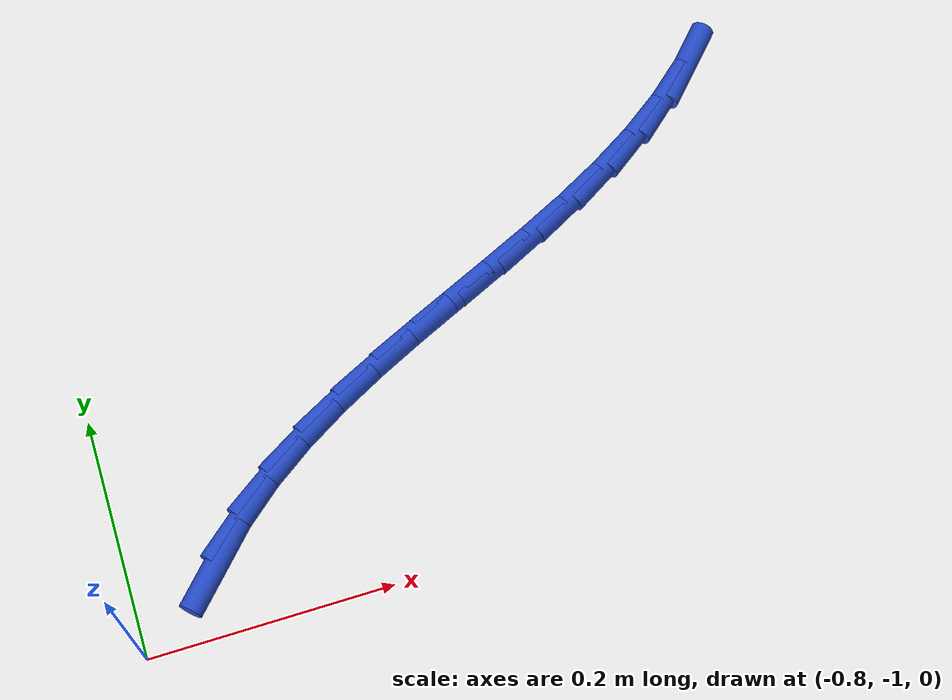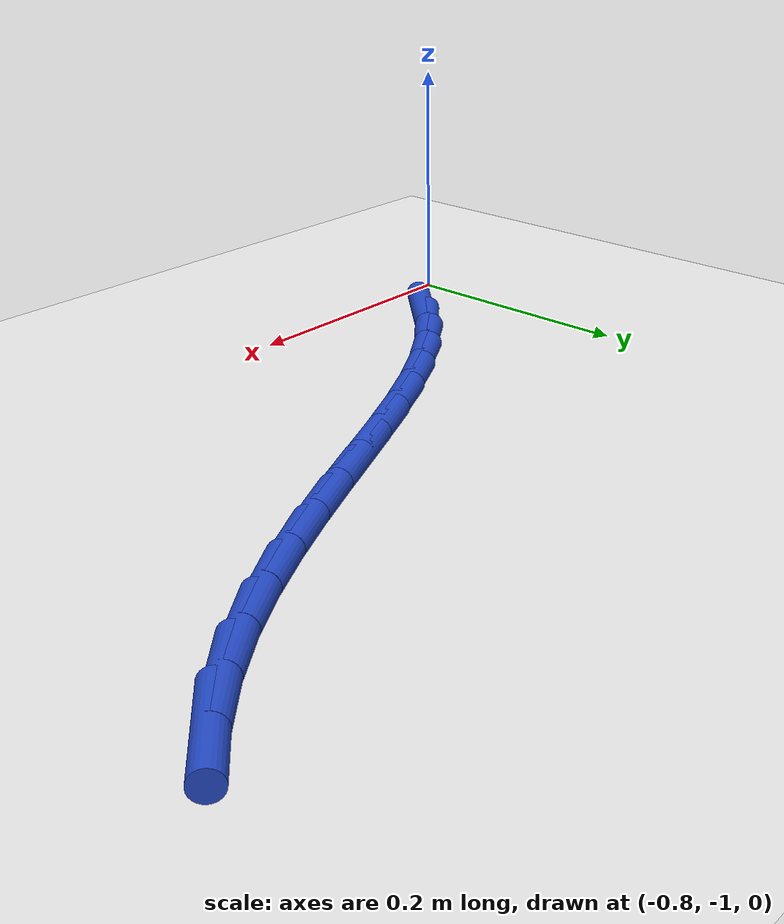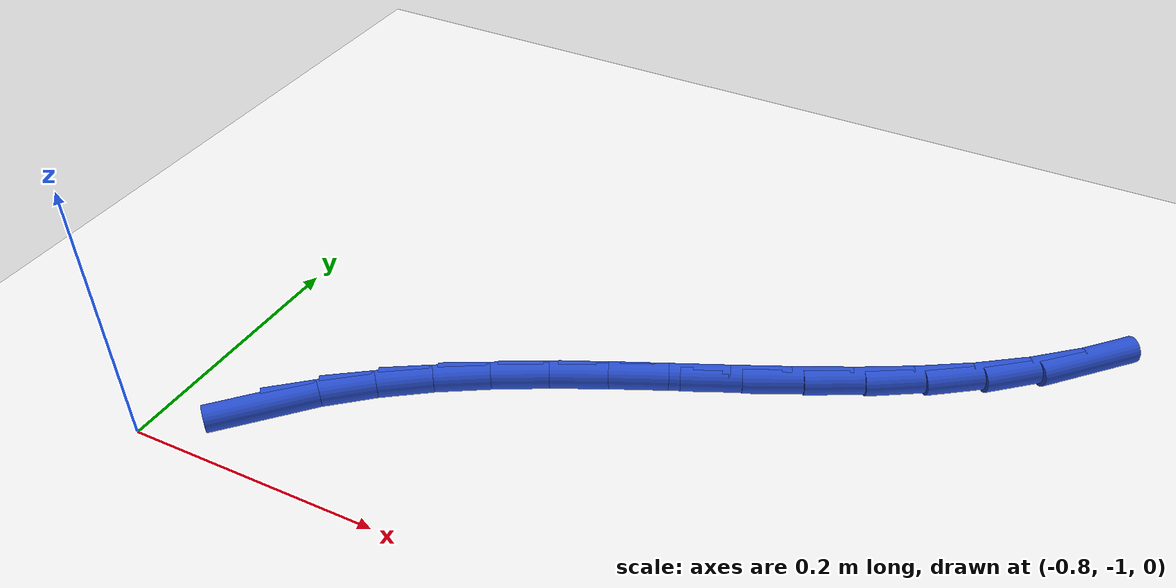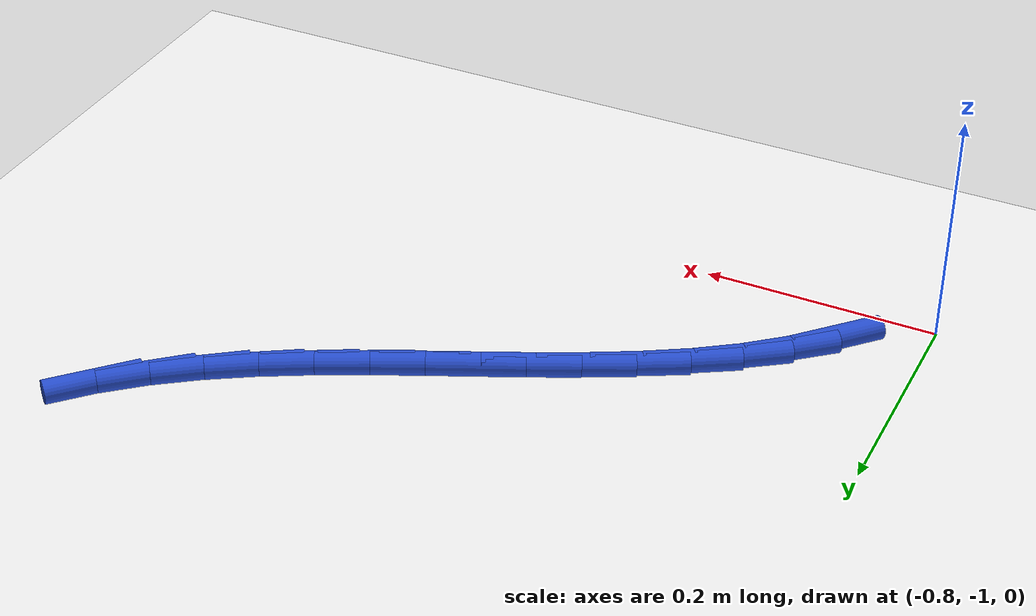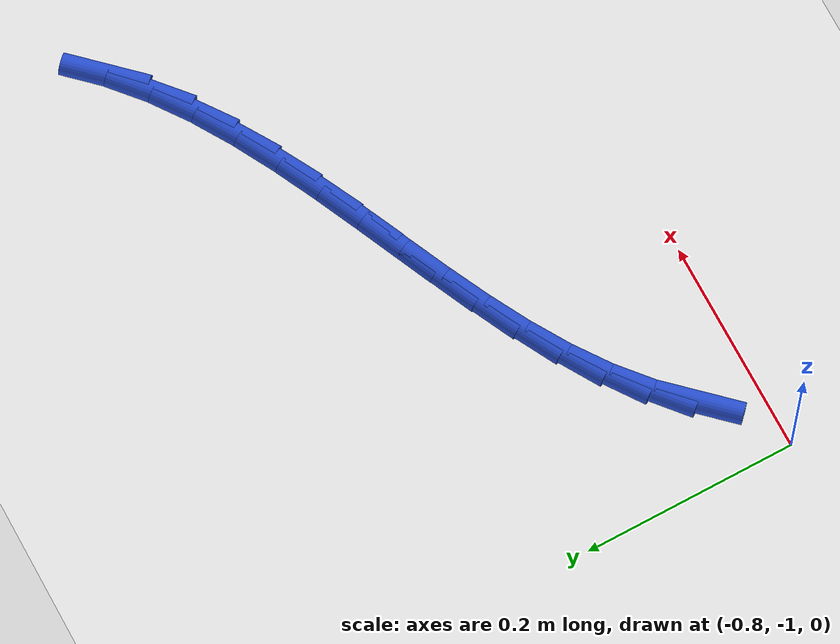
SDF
<sdf version="1.6">
 <world name="default">
  <model name="ground_plane">
   <static>1</static>
   <link name="link">
    <collision name="collision">
     <geometry><plane><normal>0 0 1</normal><size>100 100</size></plane></geometry>
     <surface><friction><ode><mu>100</mu><mu2>50</mu2></ode></friction></surface>
    </collision>
    <visual name="visual">
     <cast_shadows>0</cast_shadows>
     <geometry><plane><normal>0 0 1</normal><size>100 100</size></plane></geometry>
     <material>
      <script><uri>file://media/materials/scripts/gazebo.material</uri><name>Gazebo/WhiteGlow</name></script>
     </material>
    </visual>
   </link>
  </model>
  <model name="line">
   <link name="link_150">
    <pose>-0.7309871954879246 -0.9471190810374578 0.01 0 1.57 0.8182685698094457</pose>
    <collision name="collision">
     <geometry><cylinder><radius>0.01</radius><length>0.08</length></cylinder></geometry>
    </collision>
    <visual name="visual">
     <material>
      <script><name>Gazebo/Blue</name><uri>file://media/materials/scripts/gazebo.material</uri></script>
     </material>
     <geometry><cylinder><radius>0.01</radius><length>0.08</length></cylinder></geometry>
    </visual>
   </link>
   <link name="link_151">
    <pose>-0.7032200288792686 -0.9174637329473339 0.01 0 1.57 0.7085212912270221</pose>
    <collision name="collision">
     <geometry><cylinder><radius>0.01</radius><length>0.08</length></cylinder></geometry>
    </collision>
    <visual name="visual">
     <material>
      <script><name>Gazebo/Blue</name><uri>file://media/materials/scripts/gazebo.material</uri></script>
     </material>
     <geometry><cylinder><radius>0.01</radius><length>0.08</length></cylinder></geometry>
    </visual>
   </link>
   <link name="link_152">
    <pose>-0.6722010843577202 -0.8908817145578161 0.01 0 1.57 0.6175885877493181</pose>
    <collision name="collision">
     <geometry><cylinder><radius>0.01</radius><length>0.08</length></cylinder></geometry>
    </collision>
    <visual name="visual">
     <material>
      <script><name>Gazebo/Blue</name><uri>file://media/materials/scripts/gazebo.material</uri></script>
     </material>
     <geometry><cylinder><radius>0.01</radius><length>0.08</length></cylinder></geometry>
    </visual>
   </link>
   <link name="link_153">
    <pose>-0.6384186014821879 -0.8668868673202542 0.01 0 1.57 0.5457536862708688</pose>
    <collision name="collision">
     <geometry><cylinder><radius>0.01</radius><length>0.08</length></cylinder></geometry>
    </collision>
    <visual name="visual">
     <material>
      <script><name>Gazebo/Blue</name><uri>file://media/materials/scripts/gazebo.material</uri></script>
     </material>
     <geometry><cylinder><radius>0.01</radius><length>0.08</length></cylinder></geometry>
    </visual>
   </link>
   <link name="link_154">
    <pose>-0.6023629552660799 -0.8449910718310394 0.01 0 1.57 0.49210222834016965</pose>
    <collision name="collision">
     <geometry><cylinder><radius>0.01</radius><length>0.08</length></cylinder></geometry>
    </collision>
    <visual name="visual">
     <material>
      <script><name>Gazebo/Blue</name><uri>file://media/materials/scripts/gazebo.material</uri></script>
     </material>
     <geometry><cylinder><radius>0.01</radius><length>0.08</length></cylinder></geometry>
    </visual>
   </link>
   <link name="link_155">
    <pose>-0.5645245207228062 -0.8247062086865633 0.01 0 1.57 0.45536698908151263</pose>
    <collision name="collision">
     <geometry><cylinder><radius>0.01</radius><length>0.08</length></cylinder></geometry>
    </collision>
    <visual name="visual">
     <material>
      <script><name>Gazebo/Blue</name><uri>file://media/materials/scripts/gazebo.material</uri></script>
     </material>
     <geometry><cylinder><radius>0.01</radius><length>0.08</length></cylinder></geometry>
    </visual>
   </link>
   <link name="link_156">
    <pose>-0.5253936728657758 -0.8055441584832176 0.01 0 1.57 0.4344041815512689</pose>
    <collision name="collision">
     <geometry><cylinder><radius>0.01</radius><length>0.08</length></cylinder></geometry>
    </collision>
    <visual name="visual">
     <material>
      <script><name>Gazebo/Blue</name><uri>file://media/materials/scripts/gazebo.material</uri></script>
     </material>
     <geometry><cylinder><radius>0.01</radius><length>0.08</length></cylinder></geometry>
    </visual>
   </link>
   <link name="link_157">
    <pose>-0.48546078670839726 -0.7870168018173932 0.01 0 1.57 0.42843420935828713</pose>
    <collision name="collision">
     <geometry><cylinder><radius>0.01</radius><length>0.08</length></cylinder></geometry>
    </collision>
    <visual name="visual">
     <material>
      <script><name>Gazebo/Blue</name><uri>file://media/materials/scripts/gazebo.material</uri></script>
     </material>
     <geometry><cylinder><radius>0.01</radius><length>0.08</length></cylinder></geometry>
    </visual>
   </link>
   <link name="link_158">
    <pose>-0.4452162372640796 -0.7686360192854819 0.01 0 1.57 0.4371381305174373</pose>
    <collision name="collision">
     <geometry><cylinder><radius>0.01</radius><length>0.08</length></cylinder></geometry>
    </collision>
    <visual name="visual">
     <material>
      <script><name>Gazebo/Blue</name><uri>file://media/materials/scripts/gazebo.material</uri></script>
     </material>
     <geometry><cylinder><radius>0.01</radius><length>0.08</length></cylinder></geometry>
    </visual>
   </link>
   <link name="link_159">
    <pose>-0.405150399546231 -0.7499136914838742 0.01 0 1.57 0.46067070431378837</pose>
    <collision name="collision">
     <geometry><cylinder><radius>0.01</radius><length>0.08</length></cylinder></geometry>
    </collision>
    <visual name="visual">
     <material>
      <script><name>Gazebo/Blue</name><uri>file://media/materials/scripts/gazebo.material</uri></script>
     </material>
     <geometry><cylinder><radius>0.01</radius><length>0.08</length></cylinder></geometry>
    </visual>
   </link>
   <link name="link_160">
    <pose>-0.365753648568262 -0.7303616990089626 0.01 0 1.57 0.4996101865392756</pose>
    <collision name="collision">
     <geometry><cylinder><radius>0.01</radius><length>0.08</length></cylinder></geometry>
    </collision>
    <visual name="visual">
     <material>
      <script><name>Gazebo/Blue</name><uri>file://media/materials/scripts/gazebo.material</uri></script>
     </material>
     <geometry><cylinder><radius>0.01</radius><length>0.08</length></cylinder></geometry>
    </visual>
   </link>
   <link name="link_161">
    <pose>-0.3275163593435808 -0.7094919224571382 0.01 0 1.57 0.5548270974676646</pose>
    <collision name="collision">
     <geometry><cylinder><radius>0.01</radius><length>0.08</length></cylinder></geometry>
    </collision>
    <visual name="visual">
     <material>
      <script><name>Gazebo/Blue</name><uri>file://media/materials/scripts/gazebo.material</uri></script>
     </material>
     <geometry><cylinder><radius>0.01</radius><length>0.08</length></cylinder></geometry>
    </visual>
   </link>
   <link name="link_162">
    <pose>-0.29092890688559647 -0.6868162424247923 0.01 0 1.57 0.6272216736999945</pose>
    <collision name="collision">
     <geometry><cylinder><radius>0.01</radius><length>0.08</length></cylinder></geometry>
    </collision>
    <visual name="visual">
     <material>
      <script><name>Gazebo/Blue</name><uri>file://media/materials/scripts/gazebo.material</uri></script>
     </material>
     <geometry><cylinder><radius>0.01</radius><length>0.08</length></cylinder></geometry>
    </visual>
   </link>
   <link name="link_163">
    <pose>-0.25648166620771784 -0.6618465395083162 0.01 0 1.57 0.7171468039147929</pose>
    <collision name="collision">
     <geometry><cylinder><radius>0.01</radius><length>0.08</length></cylinder></geometry>
    </collision>
    <visual name="visual">
     <material>
      <script><name>Gazebo/Blue</name><uri>file://media/materials/scripts/gazebo.material</uri></script>
     </material>
     <geometry><cylinder><radius>0.01</radius><length>0.08</length></cylinder></geometry>
    </visual>
   </link>
   <link name="link_164">
    <pose>-0.22466187567566992 -0.6340986488059552 0.01 0 1.57 0.8149549469638377</pose>
    <collision name="collision">
     <geometry><cylinder><radius>0.01</radius><length>0.08</length></cylinder></geometry>
    </collision>
    <visual name="visual">
     <material>
      <script><name>Gazebo/Blue</name><uri>file://media/materials/scripts/gazebo.material</uri></script>
     </material>
     <geometry><cylinder><radius>0.01</radius><length>0.08</length></cylinder></geometry>
    </visual>
   </link>
  </model>
 </world>
</sdf>
